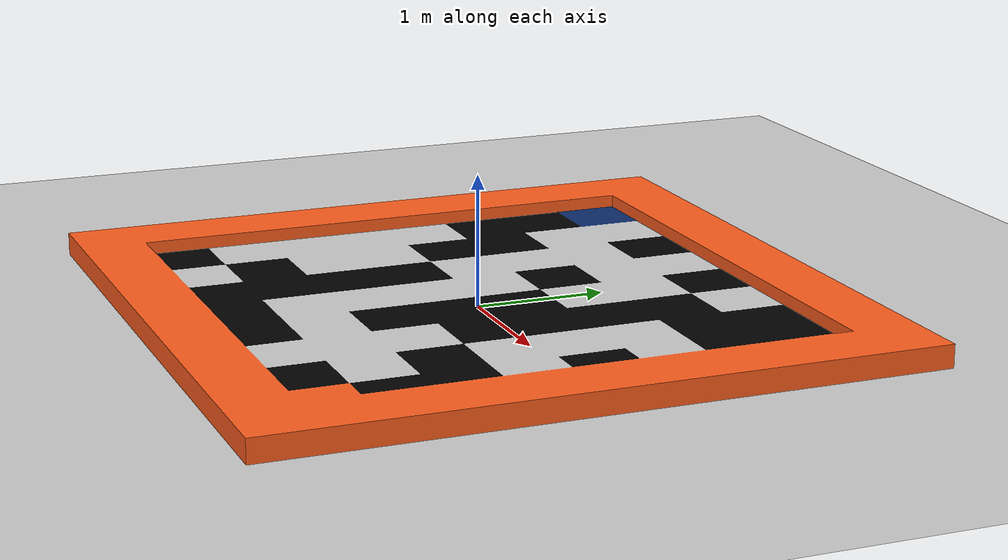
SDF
<?xml version="1.0"?>
<sdf version="1.4.1">
  <world name="eight">
    <include>
      <uri>model://ground_plane</uri>
    </include>
    <include>
      <uri>model://sun</uri>
    </include>
    <model name="eight">
      <pose>0 0 0  0 0 0</pose>
      <link name="body">
        <visual name="visual">
          <geometry>
            <mesh><uri>file://eightmodel.dae</uri></mesh>
          </geometry>
        </visual>
      </link>
    </model>
  </world>
</sdf>
